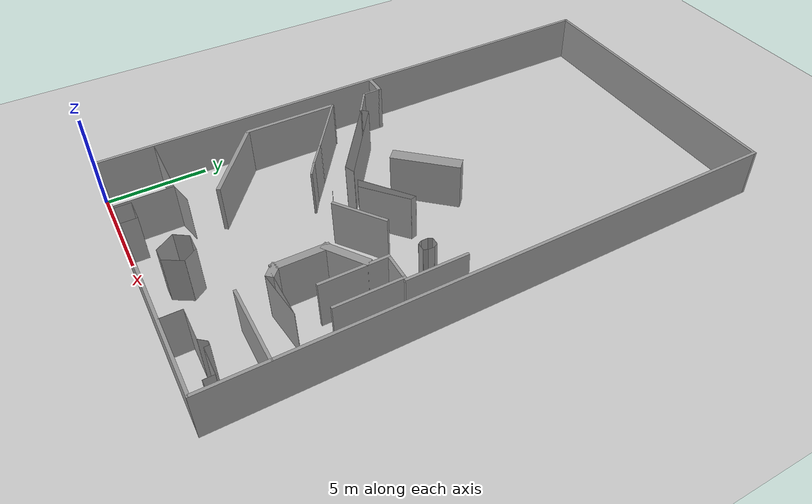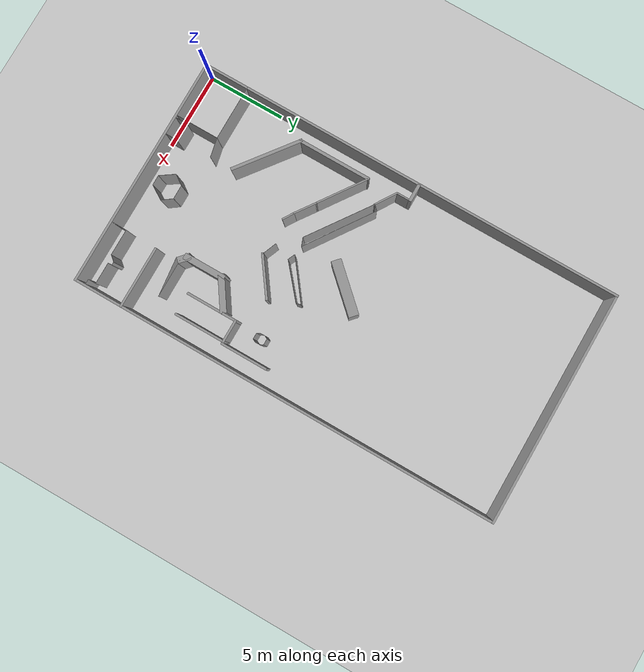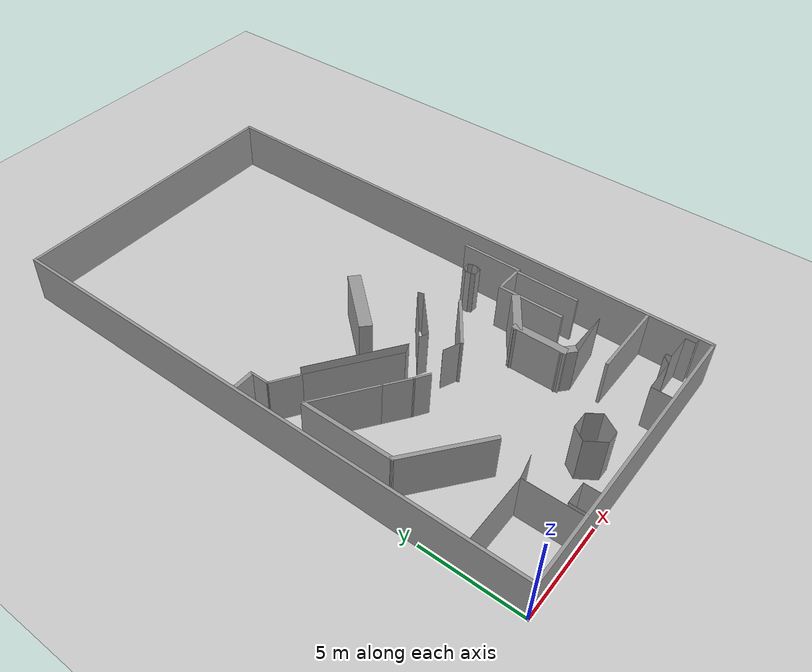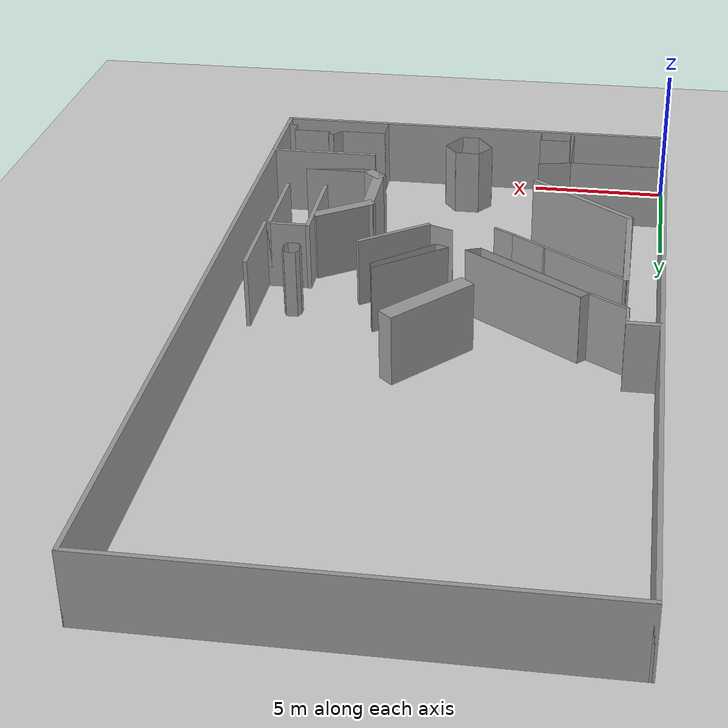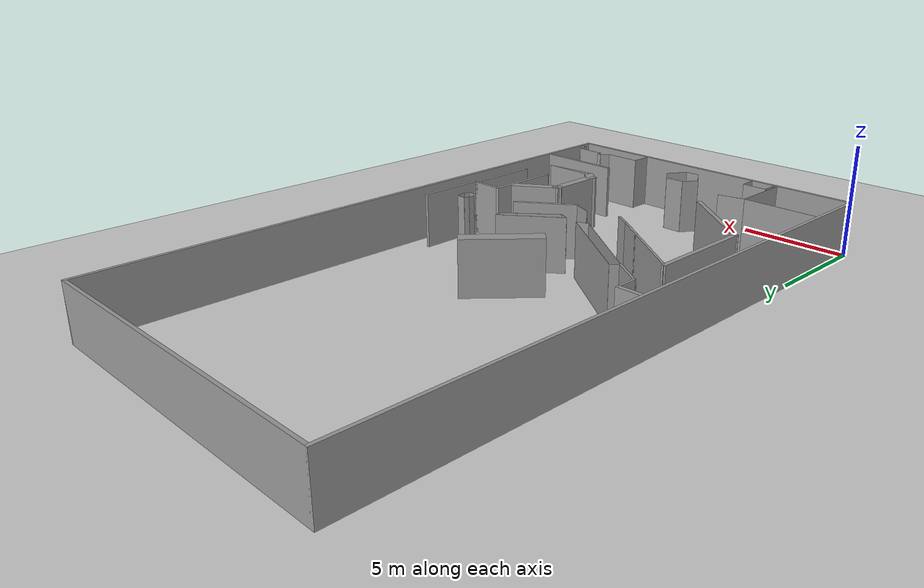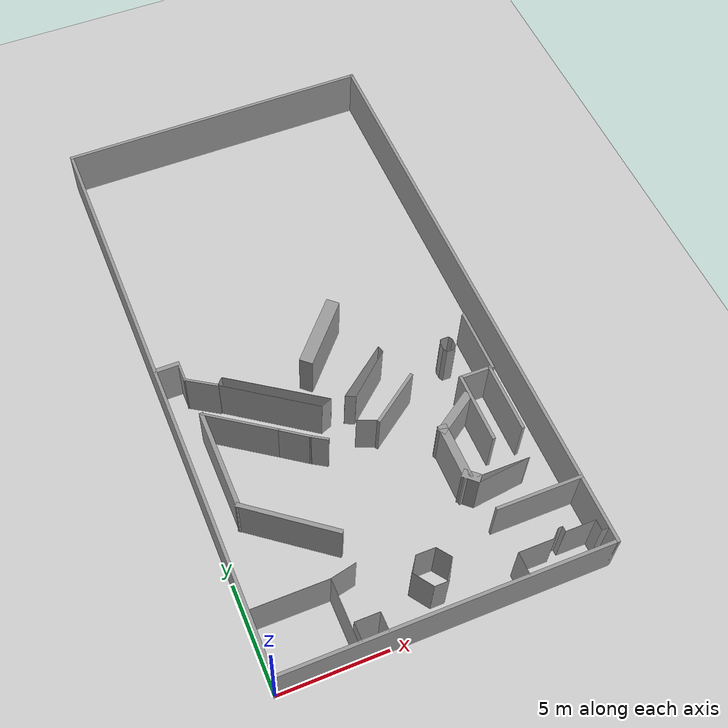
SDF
<sdf version="1.7">
 <world name="default">
  <model name="ground_plane">
   <static>1</static>
   <link name="link">
    <collision name="collision">
     <geometry><plane><normal>0 0 1</normal><size>100 100</size></plane></geometry>
     <surface>
      <contact><collide_bitmask>65535</collide_bitmask></contact>
      <friction><ode><mu>100</mu><mu2>50</mu2></ode></friction>
     </surface>
    </collision>
    <visual name="visual">
     <cast_shadows>0</cast_shadows>
     <geometry><plane><normal>0 0 1</normal><size>100 100</size></plane></geometry>
     <material>
      <script><uri>file://media/materials/scripts/gazebo.material</uri><name>Gazebo/Grey</name></script>
     </material>
    </visual>
   </link>
  </model>
  <model name="Untitled">
   <pose>7.5 14 0 0 -0 0</pose>
   <link name="Wall_0">
    <collision name="Wall_0_Collision">
     <geometry><box><size>28.15 0.15 2.5</size></box></geometry>
     <pose>0 0 1.25 0 -0 0</pose>
    </collision>
    <visual name="Wall_0_Visual">
     <pose>0 0 1.25 0 -0 0</pose>
     <geometry><box><size>28.15 0.15 2.5</size></box></geometry>
     <material>
      <script><uri>file://media/materials/scripts/gazebo.material</uri><name>Gazebo/Grey</name></script>
      <ambient>1 1 1 1</ambient>
     </material>
     <meta><layer>0</layer></meta>
    </visual>
    <pose>-7.5 0 0 0 -0 1.5708</pose>
   </link>
   <link name="Wall_2">
    <collision name="Wall_2_Collision">
     <geometry><box><size>15.15 0.15 2.5</size></box></geometry>
     <pose>0 0 1.25 0 -0 0</pose>
    </collision>
    <visual name="Wall_2_Visual">
     <pose>0 0 1.25 0 -0 0</pose>
     <geometry><box><size>15.15 0.15 2.5</size></box></geometry>
     <material>
      <script><uri>file://media/materials/scripts/gazebo.material</uri><name>Gazebo/Grey</name></script>
      <ambient>1 1 1 1</ambient>
     </material>
     <meta><layer>0</layer></meta>
    </visual>
    <pose>-0 -14 0 0 -0 0</pose>
   </link>
   <link name="Wall_4">
    <collision name="Wall_4_Collision">
     <geometry><box><size>28.15 0.15 2.5</size></box></geometry>
     <pose>0 0 1.25 0 -0 0</pose>
    </collision>
    <visual name="Wall_4_Visual">
     <pose>0 0 1.25 0 -0 0</pose>
     <geometry><box><size>28.15 0.15 2.5</size></box></geometry>
     <material>
      <script><uri>file://media/materials/scripts/gazebo.material</uri><name>Gazebo/Grey</name></script>
      <ambient>1 1 1 1</ambient>
     </material>
     <meta><layer>0</layer></meta>
    </visual>
    <pose>7.5 0 0 0 -0 1.5708</pose>
   </link>
   <link name="Wall_6">
    <collision name="Wall_6_Collision">
     <geometry><box><size>15.15 0.15 2.5</size></box></geometry>
     <pose>0 0 1.25 0 -0 0</pose>
    </collision>
    <visual name="Wall_6_Visual">
     <pose>0 0 1.25 0 -0 0</pose>
     <geometry><box><size>15.15 0.15 2.5</size></box></geometry>
     <material>
      <script><uri>file://media/materials/scripts/gazebo.material</uri><name>Gazebo/Grey</name></script>
      <ambient>1 1 1 1</ambient>
     </material>
     <meta><layer>0</layer></meta>
    </visual>
    <pose>-0 14 0 0 -0 0</pose>
   </link>
   <static>1</static>
  </model>
  <model name="Untitled_0">
   <pose>4.22599 1.55046 0 0 -0 0</pose>
   <link name="Wall_0">
    <collision name="Wall_0_Collision">
     <geometry><box><size>3.56 0.01 2.5</size></box></geometry>
     <pose>0 0 1.25 0 -0 0</pose>
    </collision>
    <visual name="Wall_0_Visual">
     <pose>0 0 1.25 0 -0 0</pose>
     <geometry><box><size>3.56 0.01 2.5</size></box></geometry>
     <material>
      <script><uri>file://media/materials/scripts/gazebo.material</uri><name>Gazebo/Grey</name></script>
      <ambient>1 1 1 1</ambient>
     </material>
     <meta><layer>0</layer></meta>
    </visual>
    <pose>-2.45099 1.29954 0 0 -0 0</pose>
   </link>
   <link name="Wall_10">
    <collision name="Wall_10_Collision">
     <geometry><box><size>0.855 0.01 2.5</size></box></geometry>
     <pose>0 0 1.25 0 -0 0</pose>
    </collision>
    <visual name="Wall_10_Visual">
     <pose>0 0 1.25 0 -0 0</pose>
     <geometry><box><size>0.855 0.01 2.5</size></box></geometry>
     <material>
      <script><uri>file://media/materials/scripts/gazebo.material</uri><name>Gazebo/Grey</name></script>
      <ambient>1 1 1 1</ambient>
     </material>
     <meta><layer>0</layer></meta>
    </visual>
    <pose>0.624012 -1.12796 0 0 -0 -1.5708</pose>
   </link>
   <link name="Wall_12">
    <collision name="Wall_12_Collision">
     <geometry><box><size>0.91 0.01 2.5</size></box></geometry>
     <pose>0 0 1.25 0 -0 0</pose>
    </collision>
    <visual name="Wall_12_Visual">
     <pose>0 0 1.25 0 -0 0</pose>
     <geometry><box><size>0.91 0.01 2.5</size></box></geometry>
     <material>
      <script><uri>file://media/materials/scripts/gazebo.material</uri><name>Gazebo/Grey</name></script>
      <ambient>1 1 1 1</ambient>
     </material>
     <meta><layer>0</layer></meta>
    </visual>
    <pose>3.32401 0.949543 0 0 -0 0</pose>
   </link>
   <link name="Wall_14">
    <collision name="Wall_14_Collision">
     <geometry><box><size>0.784209 0.01 2.5</size></box></geometry>
     <pose>0 0 1.25 0 -0 0</pose>
    </collision>
    <visual name="Wall_14_Visual">
     <pose>0 0 1.25 0 -0 0</pose>
     <geometry><box><size>0.784209 0.01 2.5</size></box></geometry>
     <material>
      <script><uri>file://media/materials/scripts/gazebo.material</uri><name>Gazebo/Grey</name></script>
      <ambient>1 1 1 1</ambient>
     </material>
     <meta><layer>0</layer></meta>
    </visual>
    <pose>3.99901 0.634543 0 0 -0 -0.950547</pose>
   </link>
   <link name="Wall_16">
    <collision name="Wall_16_Collision">
     <geometry><box><size>1.03927 0.01 2.5</size></box></geometry>
     <pose>0 0 1.25 0 -0 0</pose>
    </collision>
    <visual name="Wall_16_Visual">
     <pose>0 0 1.25 0 -0 0</pose>
     <geometry><box><size>1.03927 0.01 2.5</size></box></geometry>
     <material>
      <script><uri>file://media/materials/scripts/gazebo.material</uri><name>Gazebo/Grey</name></script>
      <ambient>1 1 1 1</ambient>
     </material>
     <meta><layer>0</layer></meta>
    </visual>
    <pose>3.94901 -0.115457 0 0 -0 -2.13455</pose>
   </link>
   <link name="Wall_18">
    <collision name="Wall_18_Collision">
     <geometry><box><size>0.66 0.01 2.5</size></box></geometry>
     <pose>0 0 1.25 0 -0 0</pose>
    </collision>
    <visual name="Wall_18_Visual">
     <pose>0 0 1.25 0 -0 0</pose>
     <geometry><box><size>0.66 0.01 2.5</size></box></geometry>
     <material>
      <script><uri>file://media/materials/scripts/gazebo.material</uri><name>Gazebo/Grey</name></script>
      <ambient>1 1 1 1</ambient>
     </material>
     <meta><layer>0</layer></meta>
    </visual>
    <pose>3.34901 -0.550457 0 0 -0 3.14159</pose>
   </link>
   <link name="Wall_2">
    <collision name="Wall_2_Collision">
     <geometry><box><size>2.86 0.01 2.5</size></box></geometry>
     <pose>0 0 1.25 0 -0 0</pose>
    </collision>
    <visual name="Wall_2_Visual">
     <pose>0 0 1.25 0 -0 0</pose>
     <geometry><box><size>2.86 0.01 2.5</size></box></geometry>
     <material>
      <script><uri>file://media/materials/scripts/gazebo.material</uri><name>Gazebo/Grey</name></script>
      <ambient>1 1 1 1</ambient>
     </material>
     <meta><layer>0</layer></meta>
    </visual>
    <pose>-0.675988 -0.125457 0 0 -0 -1.5708</pose>
   </link>
   <link name="Wall_20">
    <collision name="Wall_20_Collision">
     <geometry><box><size>1.06683 0.01 2.5</size></box></geometry>
     <pose>0 0 1.25 0 -0 0</pose>
    </collision>
    <visual name="Wall_20_Visual">
     <pose>0 0 1.25 0 -0 0</pose>
     <geometry><box><size>1.06683 0.01 2.5</size></box></geometry>
     <material>
      <script><uri>file://media/materials/scripts/gazebo.material</uri><name>Gazebo/Grey</name></script>
      <ambient>1 1 1 1</ambient>
     </material>
     <meta><layer>0</layer></meta>
    </visual>
    <pose>2.72401 -0.115457 0 0 -0 2.17455</pose>
   </link>
   <link name="Wall_22">
    <collision name="Wall_22_Collision">
     <geometry><box><size>0.784209 0.01 2.5</size></box></geometry>
     <pose>0 0 1.25 0 -0 0</pose>
    </collision>
    <visual name="Wall_22_Visual">
     <pose>0 0 1.25 0 -0 0</pose>
     <geometry><box><size>0.784209 0.01 2.5</size></box></geometry>
     <material>
      <script><uri>file://media/materials/scripts/gazebo.material</uri><name>Gazebo/Grey</name></script>
      <ambient>1 1 1 1</ambient>
     </material>
     <meta><layer>0</layer></meta>
    </visual>
    <pose>2.64901 0.634543 0 0 -0 -2.19105</pose>
   </link>
   <link name="Wall_4">
    <collision name="Wall_4_Collision">
     <geometry><box><size>1.23577 0.01 2.5</size></box></geometry>
     <pose>0 0 1.25 0 -0 0</pose>
    </collision>
    <visual name="Wall_4_Visual">
     <pose>0 0 1.25 0 -0 0</pose>
     <geometry><box><size>1.23577 0.01 2.5</size></box></geometry>
     <material>
      <script><uri>file://media/materials/scripts/gazebo.material</uri><name>Gazebo/Grey</name></script>
      <ambient>1 1 1 1</ambient>
     </material>
     <meta><layer>0</layer></meta>
    </visual>
    <pose>-0.075987 1.42454 0 0 -0 0.205395</pose>
   </link>
   <link name="Wall_6">
    <collision name="Wall_6_Collision">
     <geometry><box><size>0.855 0.01 2.5</size></box></geometry>
     <pose>0 0 1.25 0 -0 0</pose>
    </collision>
    <visual name="Wall_6_Visual">
     <pose>0 0 1.25 0 -0 0</pose>
     <geometry><box><size>0.855 0.01 2.5</size></box></geometry>
     <material>
      <script><uri>file://media/materials/scripts/gazebo.material</uri><name>Gazebo/Grey</name></script>
      <ambient>1 1 1 1</ambient>
     </material>
     <meta><layer>0</layer></meta>
    </visual>
    <pose>-0.525987 -1.12796 0 0 -0 -1.5708</pose>
   </link>
   <link name="Wall_8">
    <collision name="Wall_8_Collision">
     <geometry><box><size>1.16 0.01 2.5</size></box></geometry>
     <pose>0 0 1.25 0 -0 0</pose>
    </collision>
    <visual name="Wall_8_Visual">
     <pose>0 0 1.25 0 -0 0</pose>
     <geometry><box><size>1.16 0.01 2.5</size></box></geometry>
     <material>
      <script><uri>file://media/materials/scripts/gazebo.material</uri><name>Gazebo/Grey</name></script>
      <ambient>1 1 1 1</ambient>
     </material>
     <meta><layer>0</layer></meta>
    </visual>
    <pose>0.049013 -0.705457 0 0 -0 0</pose>
   </link>
   <static>1</static>
  </model>
  <model name="Untitled_1">
   <pose>7.535 1.5925 0 0 -0 0</pose>
   <link name="Wall_0">
    <collision name="Wall_0_Collision">
     <geometry><box><size>1.06 0.01 2.5</size></box></geometry>
     <pose>0 0 1.25 0 -0 0</pose>
    </collision>
    <visual name="Wall_0_Visual">
     <pose>0 0 1.25 0 -0 0</pose>
     <geometry><box><size>1.06 0.01 2.5</size></box></geometry>
     <material>
      <script><uri>file://media/materials/scripts/gazebo.material</uri><name>Gazebo/Grey</name></script>
      <ambient>1 1 1 1</ambient>
     </material>
     <meta><layer>0</layer></meta>
    </visual>
    <pose>3.465 -1.0675 0 0 -0 1.5708</pose>
   </link>
   <link name="Wall_10">
    <collision name="Wall_10_Collision">
     <geometry><box><size>0.470977 0.01 2.5</size></box></geometry>
     <pose>0 0 1.25 0 -0 0</pose>
    </collision>
    <visual name="Wall_10_Visual">
     <pose>0 0 1.25 0 -0 0</pose>
     <geometry><box><size>0.470977 0.01 2.5</size></box></geometry>
     <material>
      <script><uri>file://media/materials/scripts/gazebo.material</uri><name>Gazebo/Grey</name></script>
      <ambient>1 1 1 1</ambient>
     </material>
     <meta><layer>0</layer></meta>
    </visual>
    <pose>5.315 -0.3675 0 0 -0 0.86217</pose>
   </link>
   <link name="Wall_14">
    <collision name="Wall_14_Collision">
     <geometry><box><size>0.01 0.01 2.5</size></box></geometry>
     <pose>0 0 1.25 0 -0 0</pose>
    </collision>
    <visual name="Wall_14_Visual">
     <pose>0 0 1.25 0 -0 0</pose>
     <geometry><box><size>0.01 0.01 2.5</size></box></geometry>
     <material>
      <script><uri>file://media/materials/scripts/gazebo.material</uri><name>Gazebo/Grey</name></script>
      <ambient>1 1 1 1</ambient>
     </material>
     <meta><layer>0</layer></meta>
    </visual>
    <pose>5.465 -0.1925 0 0 -0 0</pose>
   </link>
   <link name="Wall_18">
    <collision name="Wall_18_Collision">
     <geometry><box><size>0.01 0.01 2.5</size></box></geometry>
     <pose>0 0 1.25 0 -0 0</pose>
    </collision>
    <visual name="Wall_18_Visual">
     <pose>0 0 1.25 0 -0 0</pose>
     <geometry><box><size>0.01 0.01 2.5</size></box></geometry>
     <material>
      <script><uri>file://media/materials/scripts/gazebo.material</uri><name>Gazebo/Grey</name></script>
      <ambient>1 1 1 1</ambient>
     </material>
     <meta><layer>0</layer></meta>
    </visual>
    <pose>5.665 -0.1925 0 0 -0 0</pose>
   </link>
   <link name="Wall_20">
    <collision name="Wall_20_Collision">
     <geometry><box><size>0.26 0.01 2.5</size></box></geometry>
     <pose>0 0 1.25 0 -0 0</pose>
    </collision>
    <visual name="Wall_20_Visual">
     <pose>0 0 1.25 0 -0 0</pose>
     <geometry><box><size>0.26 0.01 2.5</size></box></geometry>
     <material>
      <script><uri>file://media/materials/scripts/gazebo.material</uri><name>Gazebo/Grey</name></script>
      <ambient>1 1 1 1</ambient>
     </material>
     <meta><layer>0</layer></meta>
    </visual>
    <pose>5.665 -0.3175 0 0 -0 -1.5708</pose>
   </link>
   <link name="Wall_22">
    <collision name="Wall_22_Collision">
     <geometry><box><size>0.21 0.01 2.5</size></box></geometry>
     <pose>0 0 1.25 0 -0 0</pose>
    </collision>
    <visual name="Wall_22_Visual">
     <pose>0 0 1.25 0 -0 0</pose>
     <geometry><box><size>0.21 0.01 2.5</size></box></geometry>
     <material>
      <script><uri>file://media/materials/scripts/gazebo.material</uri><name>Gazebo/Grey</name></script>
      <ambient>1 1 1 1</ambient>
     </material>
     <meta><layer>0</layer></meta>
    </visual>
    <pose>5.565 -0.1925 0 0 -0 0</pose>
   </link>
   <link name="Wall_24">
    <collision name="Wall_24_Collision">
     <geometry><box><size>1.41 0.01 2.5</size></box></geometry>
     <pose>0 0 1.25 0 -0 0</pose>
    </collision>
    <visual name="Wall_24_Visual">
     <pose>0 0 1.25 0 -0 0</pose>
     <geometry><box><size>1.41 0.01 2.5</size></box></geometry>
     <material>
      <script><uri>file://media/materials/scripts/gazebo.material</uri><name>Gazebo/Grey</name></script>
      <ambient>1 1 1 1</ambient>
     </material>
     <meta><layer>0</layer></meta>
    </visual>
    <pose>6.365 -0.4425 0 0 -0 0</pose>
   </link>
   <link name="Wall_26">
    <collision name="Wall_26_Collision">
     <geometry><box><size>0.512 0.01 2.5</size></box></geometry>
     <pose>0 0 1.25 0 -0 0</pose>
    </collision>
    <visual name="Wall_26_Visual">
     <pose>0 0 1.25 0 -0 0</pose>
     <geometry><box><size>0.512 0.01 2.5</size></box></geometry>
     <material>
      <script><uri>file://media/materials/scripts/gazebo.material</uri><name>Gazebo/Grey</name></script>
      <ambient>1 1 1 1</ambient>
     </material>
     <meta><layer>0</layer></meta>
    </visual>
    <pose>7.065 -0.6935 0 0 -0 -1.5708</pose>
   </link>
   <link name="Wall_28">
    <collision name="Wall_28_Collision">
     <geometry><box><size>0.41 0.01 2.5</size></box></geometry>
     <pose>0 0 1.25 0 -0 0</pose>
    </collision>
    <visual name="Wall_28_Visual">
     <pose>0 0 1.25 0 -0 0</pose>
     <geometry><box><size>0.41 0.01 2.5</size></box></geometry>
     <material>
      <script><uri>file://media/materials/scripts/gazebo.material</uri><name>Gazebo/Grey</name></script>
      <ambient>1 1 1 1</ambient>
     </material>
     <meta><layer>0</layer></meta>
    </visual>
    <pose>7.265 -0.9445 0 0 -0 0</pose>
   </link>
   <link name="Wall_30">
    <collision name="Wall_30_Collision">
     <geometry><box><size>4.04 0.14 2.5</size></box></geometry>
     <pose>0 0 1.25 0 -0 0</pose>
    </collision>
    <visual name="Wall_30_Visual">
     <pose>0 0 1.25 0 -0 0</pose>
     <geometry><box><size>4.04 0.14 2.5</size></box></geometry>
     <material>
      <script><uri>file://media/materials/scripts/gazebo.material</uri><name>Gazebo/Grey</name></script>
      <ambient>1 1 1 1</ambient>
     </material>
     <meta><layer>0</layer></meta>
    </visual>
    <pose>5.515 1.5275 0 0 -0 0</pose>
   </link>
   <link name="Wall_8">
    <collision name="Wall_8_Collision">
     <geometry><box><size>1.71 0.01 2.5</size></box></geometry>
     <pose>0 0 1.25 0 -0 0</pose>
    </collision>
    <visual name="Wall_8_Visual">
     <pose>0 0 1.25 0 -0 0</pose>
     <geometry><box><size>1.71 0.01 2.5</size></box></geometry>
     <material>
      <script><uri>file://media/materials/scripts/gazebo.material</uri><name>Gazebo/Grey</name></script>
      <ambient>1 1 1 1</ambient>
     </material>
     <meta><layer>0</layer></meta>
    </visual>
    <pose>4.315 -0.5425 0 0 -0 0</pose>
   </link>
   <static>1</static>
  </model>
  <model name="Untitled_2">
   <pose>7.005 6.18515 0 0 -0 0</pose>
   <link name="Wall_0">
    <collision name="Wall_0_Collision">
     <geometry><box><size>2.73 0.4 2.5</size></box></geometry>
     <pose>0 0 1.25 0 -0 0</pose>
    </collision>
    <visual name="Wall_0_Visual">
     <pose>0 0 1.25 0 -0 0</pose>
     <geometry><box><size>2.73 0.4 2.5</size></box></geometry>
     <material>
      <script><uri>file://media/materials/scripts/gazebo.material</uri><name>Gazebo/Grey</name></script>
      <ambient>1 1 1 1</ambient>
     </material>
     <meta><layer>0</layer></meta>
    </visual>
    <pose>3.595 -0.020154 0 0 -0 -1.5708</pose>
   </link>
   <link name="Wall_10">
    <collision name="Wall_10_Collision">
     <geometry><box><size>3.36 0.15 2.5</size></box></geometry>
     <pose>0 0 1.25 0 -0 0</pose>
    </collision>
    <visual name="Wall_10_Visual">
     <pose>0 0 1.25 0 -0 0</pose>
     <geometry><box><size>3.36 0.15 2.5</size></box></geometry>
     <material>
      <script><uri>file://media/materials/scripts/gazebo.material</uri><name>Gazebo/Grey</name></script>
      <ambient>1 1 1 1</ambient>
     </material>
     <meta><layer>0</layer></meta>
    </visual>
    <pose>5.395 1.57985 0 0 -0 1.5708</pose>
   </link>
   <link name="Wall_12">
    <collision name="Wall_12_Collision">
     <geometry><box><size>1.54 0.14 2.5</size></box></geometry>
     <pose>0 0 1.25 0 -0 0</pose>
    </collision>
    <visual name="Wall_12_Visual">
     <pose>0 0 1.25 0 -0 0</pose>
     <geometry><box><size>1.54 0.14 2.5</size></box></geometry>
     <material>
      <script><uri>file://media/materials/scripts/gazebo.material</uri><name>Gazebo/Grey</name></script>
      <ambient>1 1 1 1</ambient>
     </material>
     <meta><layer>0</layer></meta>
    </visual>
    <pose>6.095 3.18485 0 0 -0 0</pose>
   </link>
   <link name="Wall_14">
    <collision name="Wall_14_Collision">
     <geometry><box><size>3.35 0.14 2.5</size></box></geometry>
     <pose>0 0 1.25 0 -0 0</pose>
    </collision>
    <visual name="Wall_14_Visual">
     <pose>0 0 1.25 0 -0 0</pose>
     <geometry><box><size>3.35 0.14 2.5</size></box></geometry>
     <material>
      <script><uri>file://media/materials/scripts/gazebo.material</uri><name>Gazebo/Grey</name></script>
      <ambient>1 1 1 1</ambient>
     </material>
     <meta><layer>0</layer></meta>
    </visual>
    <pose>6.795 1.57985 0 0 -0 -1.5708</pose>
   </link>
   <link name="Wall_16">
    <collision name="Wall_16_Collision">
     <geometry><box><size>3.07061 0.14 2.5</size></box></geometry>
     <pose>0 0 1.25 0 -0 0</pose>
    </collision>
    <visual name="Wall_16_Visual">
     <pose>0 0 1.25 0 -0 0</pose>
     <geometry><box><size>3.07061 0.14 2.5</size></box></geometry>
     <material>
      <script><uri>file://media/materials/scripts/gazebo.material</uri><name>Gazebo/Grey</name></script>
      <ambient>1 1 1 1</ambient>
     </material>
     <meta><layer>0</layer></meta>
    </visual>
    <pose>6.935 4.64985 0 0 -0 1.5708</pose>
   </link>
   <link name="Wall_2">
    <collision name="Wall_2_Collision">
     <geometry><box><size>0.803609 0.4 2.5</size></box></geometry>
     <pose>0 0 1.25 0 -0 0</pose>
    </collision>
    <visual name="Wall_2_Visual">
     <pose>0 0 1.25 0 -0 0</pose>
     <geometry><box><size>0.803609 0.4 2.5</size></box></geometry>
     <material>
      <script><uri>file://media/materials/scripts/gazebo.material</uri><name>Gazebo/Grey</name></script>
      <ambient>1 1 1 1</ambient>
     </material>
     <meta><layer>0</layer></meta>
    </visual>
    <pose>3.745 -1.32015 0 0 -0 -0.732815</pose>
   </link>
   <link name="Wall_4">
    <collision name="Wall_4_Collision">
     <geometry><box><size>2.51 0.01 2.5</size></box></geometry>
     <pose>0 0 1.25 0 -0 0</pose>
    </collision>
    <visual name="Wall_4_Visual">
     <pose>0 0 1.25 0 -0 0</pose>
     <geometry><box><size>2.51 0.01 2.5</size></box></geometry>
     <material>
      <script><uri>file://media/materials/scripts/gazebo.material</uri><name>Gazebo/Grey</name></script>
      <ambient>1 1 1 1</ambient>
     </material>
     <meta><layer>0</layer></meta>
    </visual>
    <pose>5.145 -1.45515 0 0 -0 0</pose>
   </link>
   <link name="Wall_6">
    <collision name="Wall_6_Collision">
     <geometry><box><size>2.51563 0.001 2.5</size></box></geometry>
     <pose>0 0 1.25 0 -0 0</pose>
    </collision>
    <visual name="Wall_6_Visual">
     <pose>0 0 1.25 0 -0 0</pose>
     <geometry><box><size>2.51563 0.001 2.5</size></box></geometry>
     <material>
      <script><uri>file://media/materials/scripts/gazebo.material</uri><name>Gazebo/Grey</name></script>
      <ambient>1 1 1 1</ambient>
     </material>
     <meta><layer>0</layer></meta>
    </visual>
    <pose>5.145 -1.59515 0 0 -0 -3.03006</pose>
   </link>
   <link name="Wall_8">
    <collision name="Wall_8_Collision">
     <geometry><box><size>2.33039 0.4 2.5</size></box></geometry>
     <pose>0 0 1.25 0 -0 0</pose>
    </collision>
    <visual name="Wall_8_Visual">
     <pose>0 0 1.25 0 -0 0</pose>
     <geometry><box><size>2.33039 0.4 2.5</size></box></geometry>
     <material>
      <script><uri>file://media/materials/scripts/gazebo.material</uri><name>Gazebo/Grey</name></script>
      <ambient>1 1 1 1</ambient>
     </material>
     <meta><layer>0</layer></meta>
    </visual>
    <pose>4.395 1.68485 0 0 -0 0.59375</pose>
   </link>
   <static>1</static>
  </model>
  <model name="Untitled_3">
   <pose>6.45335 5.75335 0 0 -0 0</pose>
   <link name="Wall_0">
    <collision name="Wall_0_Collision">
     <geometry><box><size>0.233607 0.01 2.5</size></box></geometry>
     <pose>0 0 1.25 0 -0 0</pose>
    </collision>
    <visual name="Wall_0_Visual">
     <pose>0 0 1.25 0 -0 0</pose>
     <geometry><box><size>0.233607 0.01 2.5</size></box></geometry>
     <material>
      <script><uri>file://media/materials/scripts/gazebo.material</uri><name>Gazebo/Grey</name></script>
      <ambient>1 1 1 1</ambient>
     </material>
     <meta><layer>0</layer></meta>
    </visual>
    <pose>5.89665 5.64665 0 0 -0 -2.03444</pose>
   </link>
   <link name="Wall_10">
    <collision name="Wall_10_Collision">
     <geometry><box><size>0.31 0.01 2.5</size></box></geometry>
     <pose>0 0 1.25 0 -0 0</pose>
    </collision>
    <visual name="Wall_10_Visual">
     <pose>0 0 1.25 0 -0 0</pose>
     <geometry><box><size>0.31 0.01 2.5</size></box></geometry>
     <material>
      <script><uri>file://media/materials/scripts/gazebo.material</uri><name>Gazebo/Grey</name></script>
      <ambient>1 1 1 1</ambient>
     </material>
     <meta><layer>0</layer></meta>
    </visual>
    <pose>6.44665 5.39665 0 0 -0 1.5708</pose>
   </link>
   <link name="Wall_12">
    <collision name="Wall_12_Collision">
     <geometry><box><size>0.233607 0.01 2.5</size></box></geometry>
     <pose>0 0 1.25 0 -0 0</pose>
    </collision>
    <visual name="Wall_12_Visual">
     <pose>0 0 1.25 0 -0 0</pose>
     <geometry><box><size>0.233607 0.01 2.5</size></box></geometry>
     <material>
      <script><uri>file://media/materials/scripts/gazebo.material</uri><name>Gazebo/Grey</name></script>
      <ambient>1 1 1 1</ambient>
     </material>
     <meta><layer>0</layer></meta>
    </visual>
    <pose>6.39665 5.64665 0 0 -0 2.03444</pose>
   </link>
   <link name="Wall_14">
    <collision name="Wall_14_Collision">
     <geometry><box><size>0.41 0.01 2.5</size></box></geometry>
     <pose>0 0 1.25 0 -0 0</pose>
    </collision>
    <visual name="Wall_14_Visual">
     <pose>0 0 1.25 0 -0 0</pose>
     <geometry><box><size>0.41 0.01 2.5</size></box></geometry>
     <material>
      <script><uri>file://media/materials/scripts/gazebo.material</uri><name>Gazebo/Grey</name></script>
      <ambient>1 1 1 1</ambient>
     </material>
     <meta><layer>0</layer></meta>
    </visual>
    <pose>6.14665 5.74665 0 0 -0 0</pose>
   </link>
   <link name="Wall_2">
    <collision name="Wall_2_Collision">
     <geometry><box><size>0.31 0.01 2.5</size></box></geometry>
     <pose>0 0 1.25 0 -0 0</pose>
    </collision>
    <visual name="Wall_2_Visual">
     <pose>0 0 1.25 0 -0 0</pose>
     <geometry><box><size>0.31 0.01 2.5</size></box></geometry>
     <material>
      <script><uri>file://media/materials/scripts/gazebo.material</uri><name>Gazebo/Grey</name></script>
      <ambient>1 1 1 1</ambient>
     </material>
     <meta><layer>0</layer></meta>
    </visual>
    <pose>5.84665 5.39665 0 0 -0 -1.5708</pose>
   </link>
   <link name="Wall_4">
    <collision name="Wall_4_Collision">
     <geometry><box><size>0.233607 0.01 2.5</size></box></geometry>
     <pose>0 0 1.25 0 -0 0</pose>
    </collision>
    <visual name="Wall_4_Visual">
     <pose>0 0 1.25 0 -0 0</pose>
     <geometry><box><size>0.233607 0.01 2.5</size></box></geometry>
     <material>
      <script><uri>file://media/materials/scripts/gazebo.material</uri><name>Gazebo/Grey</name></script>
      <ambient>1 1 1 1</ambient>
     </material>
     <meta><layer>0</layer></meta>
    </visual>
    <pose>5.89665 5.14665 0 0 -0 -1.10715</pose>
   </link>
   <link name="Wall_6">
    <collision name="Wall_6_Collision">
     <geometry><box><size>0.41 0.01 2.5</size></box></geometry>
     <pose>0 0 1.25 0 -0 0</pose>
    </collision>
    <visual name="Wall_6_Visual">
     <pose>0 0 1.25 0 -0 0</pose>
     <geometry><box><size>0.41 0.01 2.5</size></box></geometry>
     <material>
      <script><uri>file://media/materials/scripts/gazebo.material</uri><name>Gazebo/Grey</name></script>
      <ambient>1 1 1 1</ambient>
     </material>
     <meta><layer>0</layer></meta>
    </visual>
    <pose>6.14665 5.04665 0 0 -0 0</pose>
   </link>
   <link name="Wall_8">
    <collision name="Wall_8_Collision">
     <geometry><box><size>0.233607 0.01 2.5</size></box></geometry>
     <pose>0 0 1.25 0 -0 0</pose>
    </collision>
    <visual name="Wall_8_Visual">
     <pose>0 0 1.25 0 -0 0</pose>
     <geometry><box><size>0.233607 0.01 2.5</size></box></geometry>
     <material>
      <script><uri>file://media/materials/scripts/gazebo.material</uri><name>Gazebo/Grey</name></script>
      <ambient>1 1 1 1</ambient>
     </material>
     <meta><layer>0</layer></meta>
    </visual>
    <pose>6.39665 5.14665 0 0 -0 1.10715</pose>
   </link>
   <static>1</static>
  </model>
  <model name="Untitled_4">
   <pose>5.25232 6.65353 0 0 -0 0</pose>
   <link name="Wall_0">
    <collision name="Wall_0_Collision">
     <geometry><box><size>2.83067 0.15 2.5</size></box></geometry>
     <pose>0 0 1.25 0 -0 0</pose>
    </collision>
    <visual name="Wall_0_Visual">
     <pose>0 0 1.25 0 -0 0</pose>
     <geometry><box><size>2.83067 0.15 2.5</size></box></geometry>
     <material>
      <script><uri>file://media/materials/scripts/gazebo.material</uri><name>Gazebo/Grey</name></script>
      <ambient>1 1 1 1</ambient>
     </material>
     <meta><layer>0</layer></meta>
    </visual>
    <pose>4.05768 2.86646 0 0 -0 -2.52048</pose>
   </link>
   <link name="Wall_10">
    <collision name="Wall_10_Collision">
     <geometry><box><size>2.63488 0.01 2.5</size></box></geometry>
     <pose>0 0 1.25 0 -0 0</pose>
    </collision>
    <visual name="Wall_10_Visual">
     <pose>0 0 1.25 0 -0 0</pose>
     <geometry><box><size>2.63488 0.01 2.5</size></box></geometry>
     <material>
      <script><uri>file://media/materials/scripts/gazebo.material</uri><name>Gazebo/Grey</name></script>
      <ambient>1 1 1 1</ambient>
     </material>
     <meta><layer>0</layer></meta>
    </visual>
    <pose>3.49768 4.39647 0 0 -0 0.704494</pose>
   </link>
   <link name="Wall_12">
    <collision name="Wall_12_Collision">
     <geometry><box><size>4.9419 0.01 2.5</size></box></geometry>
     <pose>0 0 1.25 0 -0 0</pose>
    </collision>
    <visual name="Wall_12_Visual">
     <pose>0 0 1.25 0 -0 0</pose>
     <geometry><box><size>4.9419 0.01 2.5</size></box></geometry>
     <material>
      <script><uri>file://media/materials/scripts/gazebo.material</uri><name>Gazebo/Grey</name></script>
      <ambient>1 1 1 1</ambient>
     </material>
     <meta><layer>0</layer></meta>
    </visual>
    <pose>-0.582319 5.24646 0 0 -0 -0.603749</pose>
   </link>
   <link name="Wall_14">
    <collision name="Wall_14_Collision">
     <geometry><box><size>0.434264 0.01 2.5</size></box></geometry>
     <pose>0 0 1.25 0 -0 0</pose>
    </collision>
    <visual name="Wall_14_Visual">
     <pose>0 0 1.25 0 -0 0</pose>
     <geometry><box><size>0.434264 0.01 2.5</size></box></geometry>
     <material>
      <script><uri>file://media/materials/scripts/gazebo.material</uri><name>Gazebo/Grey</name></script>
      <ambient>1 1 1 1</ambient>
     </material>
     <meta><layer>0</layer></meta>
    </visual>
    <pose>-2.76232 6.49646 0 0 -0 -2.35619</pose>
   </link>
   <link name="Wall_16">
    <collision name="Wall_16_Collision">
     <geometry><box><size>4.70421 0.01 2.5</size></box></geometry>
     <pose>0 0 1.25 0 -0 0</pose>
    </collision>
    <visual name="Wall_16_Visual">
     <pose>0 0 1.25 0 -0 0</pose>
     <geometry><box><size>4.70421 0.01 2.5</size></box></geometry>
     <material>
      <script><uri>file://media/materials/scripts/gazebo.material</uri><name>Gazebo/Grey</name></script>
      <ambient>1 1 1 1</ambient>
     </material>
     <meta><layer>0</layer></meta>
    </visual>
    <pose>-0.992319 4.99646 0 0 -0 -0.61282</pose>
   </link>
   <link name="Wall_18">
    <collision name="Wall_18_Collision">
     <geometry><box><size>0.567136 0.01 2.5</size></box></geometry>
     <pose>0 0 1.25 0 -0 0</pose>
    </collision>
    <visual name="Wall_18_Visual">
     <pose>0 0 1.25 0 -0 0</pose>
     <geometry><box><size>0.567136 0.01 2.5</size></box></geometry>
     <material>
      <script><uri>file://media/materials/scripts/gazebo.material</uri><name>Gazebo/Grey</name></script>
      <ambient>1 1 1 1</ambient>
     </material>
     <meta><layer>0</layer></meta>
    </visual>
    <pose>1.18768 3.74646 0 0 -0 0.367174</pose>
   </link>
   <link name="Wall_2">
    <collision name="Wall_2_Collision">
     <geometry><box><size>1.00161 0.01 2.5</size></box></geometry>
     <pose>0 0 1.25 0 -0 0</pose>
    </collision>
    <visual name="Wall_2_Visual">
     <pose>0 0 1.25 0 -0 0</pose>
     <geometry><box><size>1.00161 0.01 2.5</size></box></geometry>
     <material>
      <script><uri>file://media/materials/scripts/gazebo.material</uri><name>Gazebo/Grey</name></script>
      <ambient>1 1 1 1</ambient>
     </material>
     <meta><layer>0</layer></meta>
    </visual>
    <pose>2.50768 2.27147 0 0 -0 2.75921</pose>
   </link>
   <link name="Wall_20">
    <collision name="Wall_20_Collision">
     <geometry><box><size>0.502443 0.01 2.5</size></box></geometry>
     <pose>0 0 1.25 0 -0 0</pose>
    </collision>
    <visual name="Wall_20_Visual">
     <pose>0 0 1.25 0 -0 0</pose>
     <geometry><box><size>0.502443 0.01 2.5</size></box></geometry>
     <material>
      <script><uri>file://media/materials/scripts/gazebo.material</uri><name>Gazebo/Grey</name></script>
      <ambient>1 1 1 1</ambient>
     </material>
     <meta><layer>0</layer></meta>
    </visual>
    <pose>2.27268 3.64647 0 0 -0 2.72337</pose>
   </link>
   <link name="Wall_22">
    <collision name="Wall_22_Collision">
     <geometry><box><size>0.854718 0.1 2.5</size></box></geometry>
     <pose>0 0 1.25 0 -0 0</pose>
    </collision>
    <visual name="Wall_22_Visual">
     <pose>0 0 1.25 0 -0 0</pose>
     <geometry><box><size>0.854718 0.1 2.5</size></box></geometry>
     <material>
      <script><uri>file://media/materials/scripts/gazebo.material</uri><name>Gazebo/Grey</name></script>
      <ambient>1 1 1 1</ambient>
     </material>
     <meta><layer>0</layer></meta>
    </visual>
    <pose>0.247681 2.26647 0 0 -0 -0.558599</pose>
   </link>
   <link name="Wall_24">
    <collision name="Wall_24_Collision">
     <geometry><box><size>1.52056 0.1 2.5</size></box></geometry>
     <pose>0 0 1.25 0 -0 0</pose>
    </collision>
    <visual name="Wall_24_Visual">
     <pose>0 0 1.25 0 -0 0</pose>
     <geometry><box><size>1.52056 0.1 2.5</size></box></geometry>
     <material>
      <script><uri>file://media/materials/scripts/gazebo.material</uri><name>Gazebo/Grey</name></script>
      <ambient>1 1 1 1</ambient>
     </material>
     <meta><layer>0</layer></meta>
    </visual>
    <pose>-0.652319 2.87646 0 0 -0 -0.61534</pose>
   </link>
   <link name="Wall_26">
    <collision name="Wall_26_Collision">
     <geometry><box><size>3.52603 0.1 2.5</size></box></geometry>
     <pose>0 0 1.25 0 -0 0</pose>
    </collision>
    <visual name="Wall_26_Visual">
     <pose>0 0 1.25 0 -0 0</pose>
     <geometry><box><size>3.52603 0.1 2.5</size></box></geometry>
     <material>
      <script><uri>file://media/materials/scripts/gazebo.material</uri><name>Gazebo/Grey</name></script>
      <ambient>1 1 1 1</ambient>
     </material>
     <meta><layer>0</layer></meta>
    </visual>
    <pose>-2.63732 4.26647 0 0 -0 -0.609052</pose>
   </link>
   <link name="Wall_6">
    <collision name="Wall_6_Collision">
     <geometry><box><size>0.320483 0.01 2.5</size></box></geometry>
     <pose>0 0 1.25 0 -0 0</pose>
    </collision>
    <visual name="Wall_6_Visual">
     <pose>0 0 1.25 0 -0 0</pose>
     <geometry><box><size>0.320483 0.01 2.5</size></box></geometry>
     <material>
      <script><uri>file://media/materials/scripts/gazebo.material</uri><name>Gazebo/Grey</name></script>
      <ambient>1 1 1 1</ambient>
     </material>
     <meta><layer>0</layer></meta>
    </visual>
    <pose>4.45768 5.39647 0 0 -0 -1.31019</pose>
   </link>
   <link name="Wall_8">
    <collision name="Wall_8_Collision">
     <geometry><box><size>2.98605 0.01 2.5</size></box></geometry>
     <pose>0 0 1.25 0 -0 0</pose>
    </collision>
    <visual name="Wall_8_Visual">
     <pose>0 0 1.25 0 -0 0</pose>
     <geometry><box><size>2.98605 0.01 2.5</size></box></geometry>
     <material>
      <script><uri>file://media/materials/scripts/gazebo.material</uri><name>Gazebo/Grey</name></script>
      <ambient>1 1 1 1</ambient>
     </material>
     <meta><layer>0</layer></meta>
    </visual>
    <pose>3.23268 4.64647 0 0 -0 0.649549</pose>
   </link>
   <static>1</static>
  </model>
  <model name="Untitled_5">
   <pose>4.47754 7.72254 0 0 -0 0</pose>
   <link name="Wall_10">
    <collision name="Wall_10_Collision">
     <geometry><box><size>4.79 0.2 2.5</size></box></geometry>
     <pose>0 0 1.25 0 -0 0</pose>
    </collision>
    <visual name="Wall_10_Visual">
     <pose>0 0 1.25 0 -0 0</pose>
     <geometry><box><size>4.79 0.2 2.5</size></box></geometry>
     <material>
      <script><uri>file://media/materials/scripts/gazebo.material</uri><name>Gazebo/Grey</name></script>
      <ambient>1 1 1 1</ambient>
     </material>
     <meta><layer>0</layer></meta>
    </visual>
    <pose>-3.26754 1.83246 0 0 -0 -1.5708</pose>
   </link>
   <link name="Wall_12">
    <collision name="Wall_12_Collision">
     <geometry><box><size>4.5942 0.2 2.5</size></box></geometry>
     <pose>0 0 1.25 0 -0 0</pose>
    </collision>
    <visual name="Wall_12_Visual">
     <pose>0 0 1.25 0 -0 0</pose>
     <geometry><box><size>4.5942 0.2 2.5</size></box></geometry>
     <material>
      <script><uri>file://media/materials/scripts/gazebo.material</uri><name>Gazebo/Grey</name></script>
      <ambient>1 1 1 1</ambient>
     </material>
     <meta><layer>0</layer></meta>
    </visual>
    <pose>-1.52254 -1.79754 0 0 -0 -0.653059</pose>
   </link>
   <link name="Wall_14">
    <collision name="Wall_14_Collision">
     <geometry><box><size>3.48217 0.63 2.5</size></box></geometry>
     <pose>0 0 1.25 0 -0 0</pose>
    </collision>
    <visual name="Wall_14_Visual">
     <pose>0 0 1.25 0 -0 0</pose>
     <geometry><box><size>3.48217 0.63 2.5</size></box></geometry>
     <material>
      <script><uri>file://media/materials/scripts/gazebo.material</uri><name>Gazebo/Grey</name></script>
      <ambient>1 1 1 1</ambient>
     </material>
     <meta><layer>0</layer></meta>
    </visual>
    <pose>3.06746 6.22746 0 0 -0 -2.31404</pose>
   </link>
   <link name="Wall_4">
    <collision name="Wall_4_Collision">
     <geometry><box><size>1.57567 0.1 2.5</size></box></geometry>
     <pose>0 0 1.25 0 -0 0</pose>
    </collision>
    <visual name="Wall_4_Visual">
     <pose>0 0 1.25 0 -0 0</pose>
     <geometry><box><size>1.57567 0.1 2.5</size></box></geometry>
     <material>
      <script><uri>file://media/materials/scripts/gazebo.material</uri><name>Gazebo/Grey</name></script>
      <ambient>1 1 1 1</ambient>
     </material>
     <meta><layer>0</layer></meta>
    </visual>
    <pose>-2.75754 5.67746 0 0 -0 -0.572966</pose>
   </link>
   <link name="Wall_6">
    <collision name="Wall_6_Collision">
     <geometry><box><size>1 0.1 2.5</size></box></geometry>
     <pose>0 0 1.25 0 -0 0</pose>
    </collision>
    <visual name="Wall_6_Visual">
     <pose>0 0 1.25 0 -0 0</pose>
     <geometry><box><size>1 0.1 2.5</size></box></geometry>
     <material>
      <script><uri>file://media/materials/scripts/gazebo.material</uri><name>Gazebo/Grey</name></script>
      <ambient>1 1 1 1</ambient>
     </material>
     <meta><layer>0</layer></meta>
    </visual>
    <pose>-3.37754 6.52746 0 0 -0 1.5708</pose>
   </link>
   <link name="Wall_8">
    <collision name="Wall_8_Collision">
     <geometry><box><size>1.15 0.2 2.5</size></box></geometry>
     <pose>0 0 1.25 0 -0 0</pose>
    </collision>
    <visual name="Wall_8_Visual">
     <pose>0 0 1.25 0 -0 0</pose>
     <geometry><box><size>1.15 0.2 2.5</size></box></geometry>
     <material>
      <script><uri>file://media/materials/scripts/gazebo.material</uri><name>Gazebo/Grey</name></script>
      <ambient>1 1 1 1</ambient>
     </material>
     <meta><layer>0</layer></meta>
    </visual>
    <pose>-3.90254 6.97746 0 0 -0 0</pose>
   </link>
   <static>1</static>
  </model>
 </world>
</sdf>
